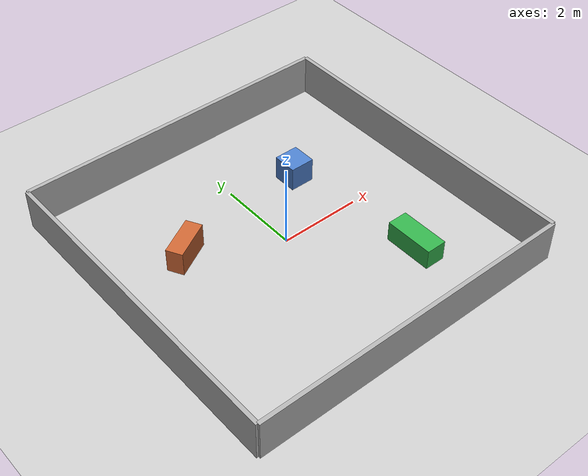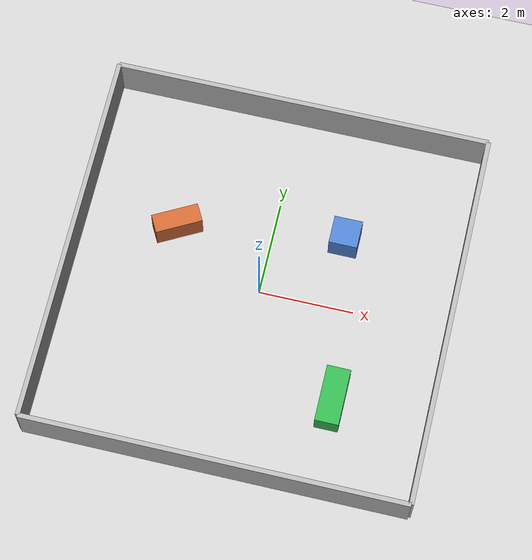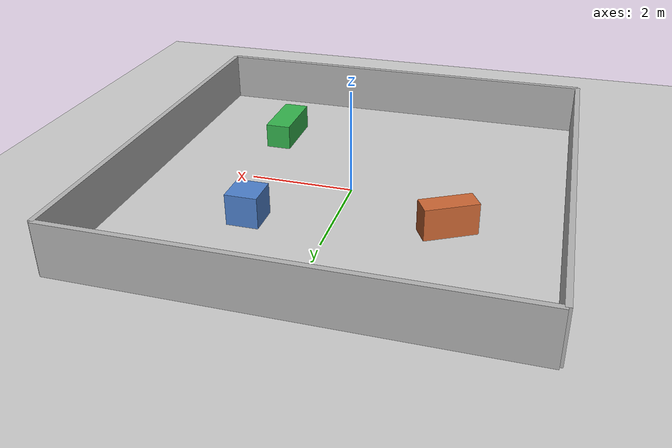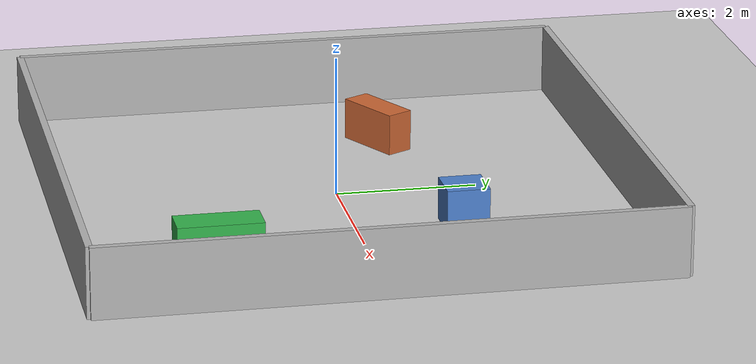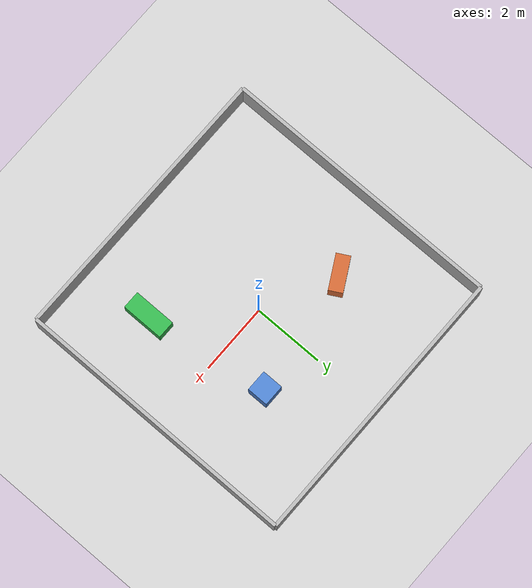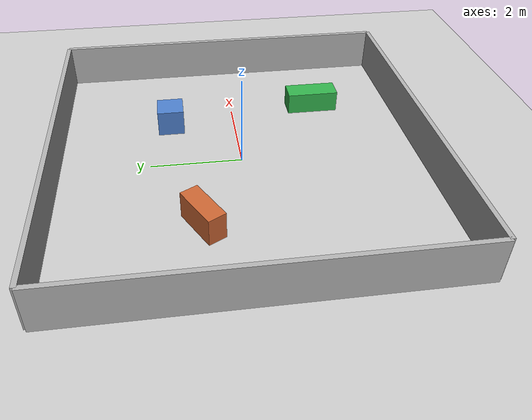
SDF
<?xml version="1.0"?>
<!--
  Простой мир: плоскость + несколько стен-боксов, образующих комнату.
  Размер ~8×8 м — удобно для тестирования лидара и AMCL.
-->
<sdf version="1.6">
  <world name="simple_room">

    <!-- Свет -->
    <include>
      <uri>model://sun</uri>
    </include>

    <!-- Земля -->
    <include>
      <uri>model://ground_plane</uri>
    </include>

    <!-- Физика -->
    <physics type="ode">
      <real_time_update_rate>1000.0</real_time_update_rate>
      <max_step_size>0.001</max_step_size>
      <real_time_factor>1</real_time_factor>
    </physics>

    <!-- ── СТЕНЫ КОМНАТЫ ──────────────────────────────────────── -->
    <!-- Северная стена -->
    <model name="wall_north">
      <static>true</static>
      <pose>0 4 0.5 0 0 0</pose>
      <link name="link">
        <collision name="col"><geometry><box><size>8 0.1 1</size></box></geometry></collision>
        <visual name="vis">
          <geometry><box><size>8 0.1 1</size></box></geometry>
          <material><ambient>0.7 0.7 0.7 1</ambient></material>
        </visual>
      </link>
    </model>

    <!-- Южная стена -->
    <model name="wall_south">
      <static>true</static>
      <pose>0 -4 0.5 0 0 0</pose>
      <link name="link">
        <collision name="col"><geometry><box><size>8 0.1 1</size></box></geometry></collision>
        <visual name="vis">
          <geometry><box><size>8 0.1 1</size></box></geometry>
          <material><ambient>0.7 0.7 0.7 1</ambient></material>
        </visual>
      </link>
    </model>

    <!-- Западная стена -->
    <model name="wall_west">
      <static>true</static>
      <pose>-4 0 0.5 0 0 1.5708</pose>
      <link name="link">
        <collision name="col"><geometry><box><size>8 0.1 1</size></box></geometry></collision>
        <visual name="vis">
          <geometry><box><size>8 0.1 1</size></box></geometry>
          <material><ambient>0.7 0.7 0.7 1</ambient></material>
        </visual>
      </link>
    </model>

    <!-- Восточная стена -->
    <model name="wall_east">
      <static>true</static>
      <pose>4 0 0.5 0 0 1.5708</pose>
      <link name="link">
        <collision name="col"><geometry><box><size>8 0.1 1</size></box></geometry></collision>
        <visual name="vis">
          <geometry><box><size>8 0.1 1</size></box></geometry>
          <material><ambient>0.7 0.7 0.7 1</ambient></material>
        </visual>
      </link>
    </model>

    <!-- ── ПРЕПЯТСТВИЯ ВНУТРИ ─────────────────────────────────── -->
    <model name="box1">
      <static>true</static>
      <pose>1.5 1.5 0.3 0 0 0</pose>
      <link name="link">
        <collision name="col"><geometry><box><size>0.6 0.6 0.6</size></box></geometry></collision>
        <visual name="vis">
          <geometry><box><size>0.6 0.6 0.6</size></box></geometry>
          <material><ambient>0.3 0.5 0.8 1</ambient></material>
        </visual>
      </link>
    </model>

    <model name="box2">
      <static>true</static>
      <pose>-2 1 0.3 0 0 0.5</pose>
      <link name="link">
        <collision name="col"><geometry><box><size>1.0 0.4 0.6</size></box></geometry></collision>
        <visual name="vis">
          <geometry><box><size>1.0 0.4 0.6</size></box></geometry>
          <material><ambient>0.8 0.4 0.2 1</ambient></material>
        </visual>
      </link>
    </model>

    <model name="box3">
      <static>true</static>
      <pose>2 -2 0.25 0 0 0</pose>
      <link name="link">
        <collision name="col"><geometry><box><size>0.5 1.2 0.5</size></box></geometry></collision>
        <visual name="vis">
          <geometry><box><size>0.5 1.2 0.5</size></box></geometry>
          <material><ambient>0.2 0.7 0.3 1</ambient></material>
        </visual>
      </link>
    </model>

  </world>
</sdf>
